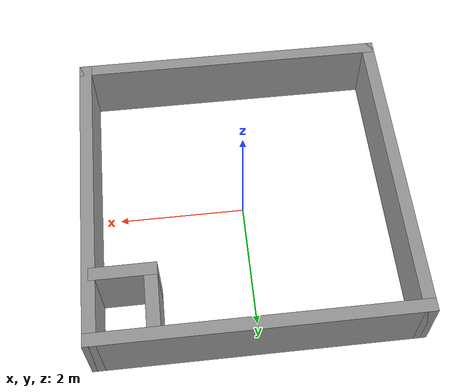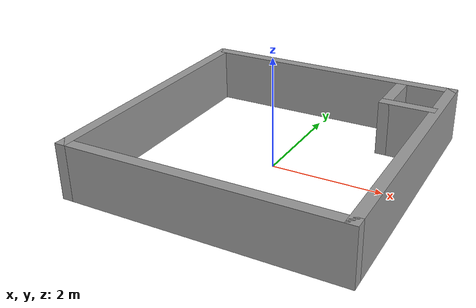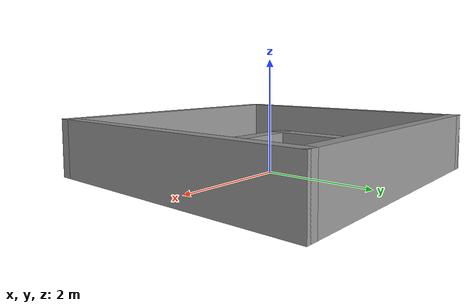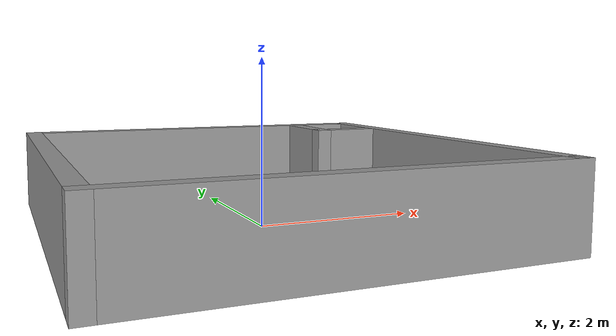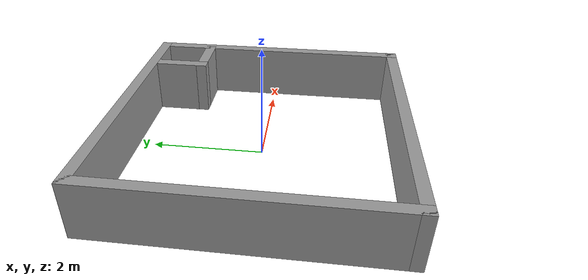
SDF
<?xml version='1.0'?>
<sdf version='1.6'>
  <model name='rm_simple'>
    <pose frame=''>0.0 0.0 0.0 0 0 0</pose>
    <link name='Wall_0'>
      <collision name='Wall_0_Collision'>
        <geometry>
          <box>
            <size>5 0.20 1.0</size>
          </box>
        </geometry>
        <pose frame=''>0 0 0.5 0 -0 0</pose>
      </collision>
      <visual name='Wall_0_Visual'>
        <pose frame=''>0 0 0.5 0 -0 0</pose>
        <geometry>
          <box>
            <size>5 0.20 1.0</size>
          </box>
        </geometry>
        <material>
          <script>
            <uri>file://media/materials/scripts/gazebo.material</uri>
            <name>Gazebo/Grey</name>
          </script>
          <ambient>1 1 1 1</ambient>
        </material>
      </visual>
      <pose frame=''>0.0 2.4 0 0 0 0</pose>
    </link>
    <link name='Wall_1'>
      <collision name='Wall_1_Collision'>
        <geometry>
          <box>
            <size>5 0.20 1.0</size>
          </box>
        </geometry>
        <pose frame=''>0 0 0.5 0 -0 0</pose>
      </collision>
      <visual name='Wall_1_Visual'>
        <pose frame=''>0 0 0.5 0 -0 0</pose>
        <geometry>
          <box>
            <size>5 0.20 1.0</size>
          </box>
        </geometry>
        <material>
          <script>
            <uri>file://media/materials/scripts/gazebo.material</uri>
            <name>Gazebo/Grey</name>
          </script>
          <ambient>1 1 1 1</ambient>
        </material>
      </visual>
      <pose frame=''>2.4 0 0 0 0 -1.5708</pose>
    </link>
    <link name='Wall_2'>
      <collision name='Wall_2_Collision'>
        <geometry>
          <box>
            <size>5 0.20 1.0</size>
          </box>
        </geometry>
        <pose frame=''>0 0 0.5 0 -0 0</pose>
      </collision>
      <visual name='Wall_2_Visual'>
        <pose frame=''>0 0 0.5 0 -0 0</pose>
        <geometry>
          <box>
            <size>5 0.20 1.0</size>
          </box>
        </geometry>
        <material>
          <script>
            <uri>file://media/materials/scripts/gazebo.material</uri>
            <name>Gazebo/Grey</name>
          </script>
          <ambient>1 1 1 1</ambient>
        </material>
      </visual>
      <pose frame=''>0 -2.4 0 0 -0 3.14159</pose>
    </link>
    <link name='Wall_21'>
      <collision name='Wall_21_Collision'>
        <geometry>
          <box>
            <size>1.0 0.20 1.0</size>
          </box>
        </geometry>
        <pose frame=''>0 0 0.5 0 -0 0</pose>
      </collision>
      <visual name='Wall_21_Visual'>
        <pose frame=''>0 0 0.5 0 -0 0</pose>
        <geometry>
          <box>
            <size>1.0 0.20 1.0</size>
          </box>
        </geometry>
        <material>
          <script>
            <uri>file://media/materials/scripts/gazebo.material</uri>
            <name>Gazebo/Grey</name>
          </script>
          <ambient>1 1 1 1</ambient>
        </material>
      </visual>
      <pose frame=''>1.9 1.4 0 0 -0 3.14159</pose>
    </link>
    <link name='Wall_22'>
      <collision name='Wall_22_Collision'>
        <geometry>
          <box>
            <size>1.0 0.20 1.0</size>
          </box>
        </geometry>
        <pose frame=''>0 0 0.5 0 -0 0</pose>
      </collision>
      <visual name='Wall_22_Visual'>
        <pose frame=''>0 0 0.5 0 -0 0</pose>
        <geometry>
          <box>
            <size>1.0 0.20 1.0</size>
          </box>
        </geometry>
        <material>
          <script>
            <uri>file://media/materials/scripts/gazebo.material</uri>
            <name>Gazebo/Grey</name>
          </script>
          <ambient>1 1 1 1</ambient>
        </material>
      </visual>
      <pose frame=''>1.5 1.8 0 0 -0 1.5708</pose>
    </link>
    <link name='Wall_3'>
      <collision name='Wall_3_Collision'>
        <geometry>
          <box>
            <size>5 0.20 1.0</size>
          </box>
        </geometry>
        <pose frame=''>0 0 0.5 0 -0 0</pose>
      </collision>
      <visual name='Wall_3_Visual'>
        <pose frame=''>0 0 0.5 0 -0 0</pose>
        <geometry>
          <box>
            <size>5 0.20 1.0</size>
          </box>
        </geometry>
        <material>
          <script>
            <uri>file://media/materials/scripts/gazebo.material</uri>
            <name>Gazebo/Grey</name>
          </script>
          <ambient>1 1 1 1</ambient>
        </material>
      </visual>
      <pose frame=''>-2.4 0 0 0 -0 1.5708</pose>
    </link>
    <static>1</static>
  </model>
</sdf>
